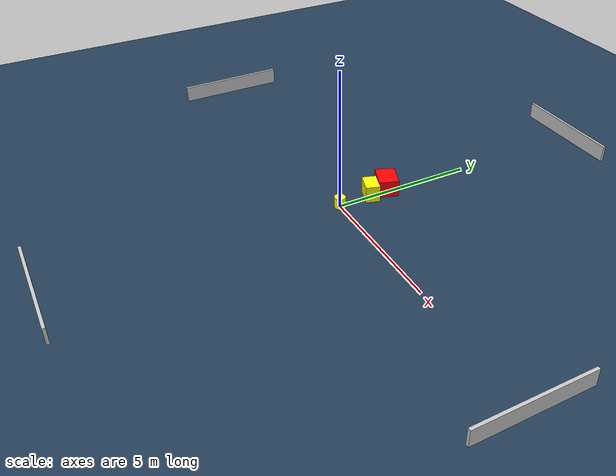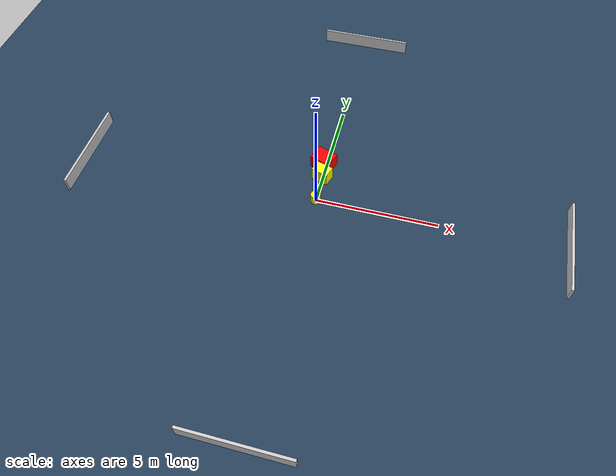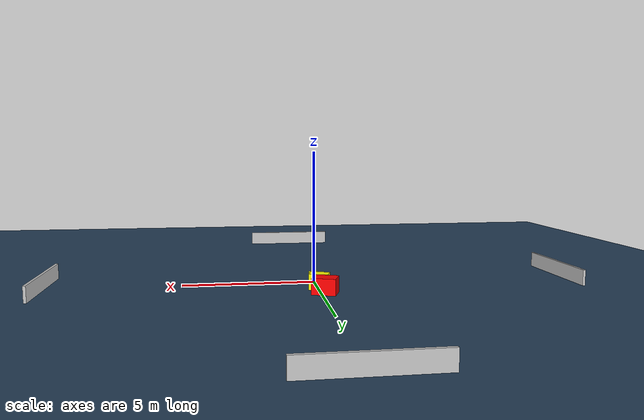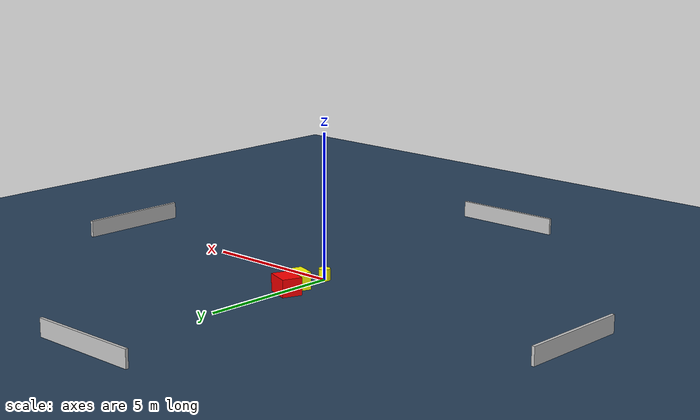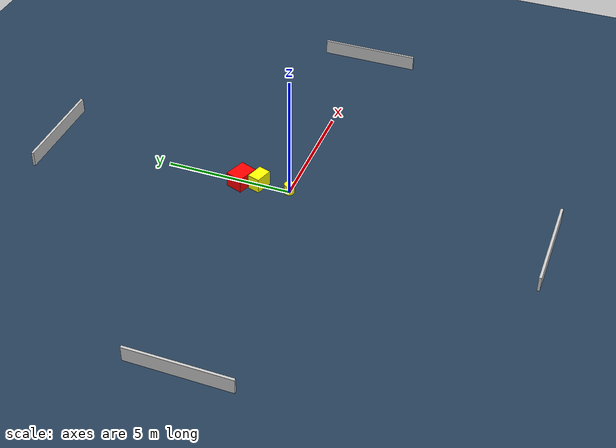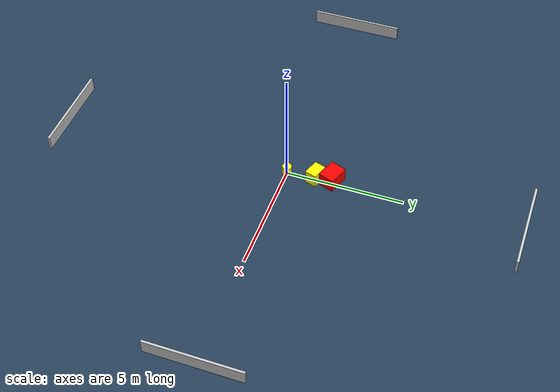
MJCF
<?xml version="1.0" ?>
<mujoco model="generated_environment">
  <option timestep="0.01" integrator="RK4" cone="elliptic"/>
  <default>
    <geom density="1"/>
  </default>
  <asset>
    <texture builtin="gradient" height="3072" name="skybox" rgb1="0.3 0.5 0.7" rgb2="0 0 0" type="skybox" width="512"/>
    <texture builtin="checker" height="300" name="groundplane" rgb1="0.2 0.3 0.4" rgb2="0.1 0.2 0.3" type="2d" width="300"/>
    <material name="groundplane" reflectance="0.2" texrepeat="5 5" texture="groundplane"/>
  </asset>
  <worldbody>
    <light dir="0 0 -1" directional="true" pos="0 0 1.5"/>
    <geom condim="3" friction="0.5 0.005 0.001" material="groundplane" name="floor" pos="0 0 0" size="0 0 0.05" type="plane"/>
    <body name="walls">
      <geom name="wall_1" condim="4" pos="-10.0 0.0 0.3" rgba="0.800000011920929 0.800000011920929 0.800000011920929 1.0" size="0.05 2.0 0.3" type="box"/>
      <geom name="wall_2" condim="4" pos="10.0 0.0 0.3" rgba="0.800000011920929 0.800000011920929 0.800000011920929 1.0" size="0.05 2.0 0.3" type="box"/>
      <geom name="wall_3" condim="4" pos="0.0 -10.0 0.3" rgba="0.800000011920929 0.800000011920929 0.800000011920929 1.0" size="2.0 0.05 0.3" type="box"/>
      <geom name="wall_4" condim="4" pos="0.0 10.0 0.3" rgba="0.800000011920929 0.800000011920929 0.800000011920929 1.0" size="2.0 0.05 0.3" type="box"/>
    </body>
    <body name="robot">
      <joint name="joint_x" type="slide" pos="0 0 0" axis="1 0 0"/>
      <joint name="joint_y" type="slide" pos="0 0 0" axis="0 1 0"/>
      <geom name="robot" type="cylinder" pos="0.0 0.0 0.2" size="0.2 0.2 0.0" mass="5.0" friction="1.0 0.005 0.0001" condim="4" rgba="1.0 1.0 0.0 1.0"/>
    </body>
    <body name="obstacle_1_movable">
      <geom name="obstacle_1_movable" condim="4" pos="-0.03745976858626599 1.2262844573077485 0.3" euler="0 0 72.5148499637204" friction="0.0 0.005 0.001" rgba="1.0 1.0 0.0 1.0" size="0.24962610621385664 0.35320266189295857 0.3" type="box" mass="0.1"/>
      <joint type="free"/>
    </body>
    <body name="obstacle_2_static">
      <geom name="obstacle_2_static" condim="4" pos="-0.14486222735902415 1.9218565167587227 0.3" euler="0 0 159.74910951540352" friction="0.0 0.005 0.001" rgba="1.0 0.0 0.0 1.0" size="0.4410968935084145 0.3455657606266225 0.3" type="box"/>
    </body>
  </worldbody>
  <actuator>
    <motor name="actuator_x" joint="joint_x" gear="1" ctrlrange="-1 1"/>
    <motor name="actuator_y" joint="joint_y" gear="1" ctrlrange="-1 1"/>
  </actuator>
</mujoco>
